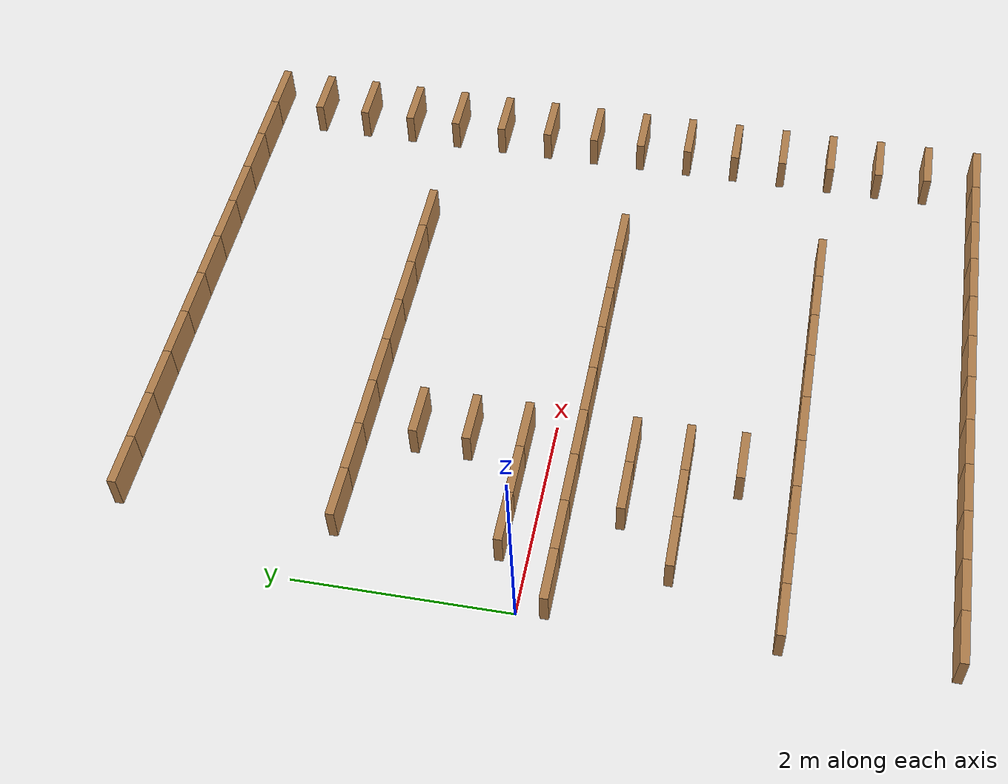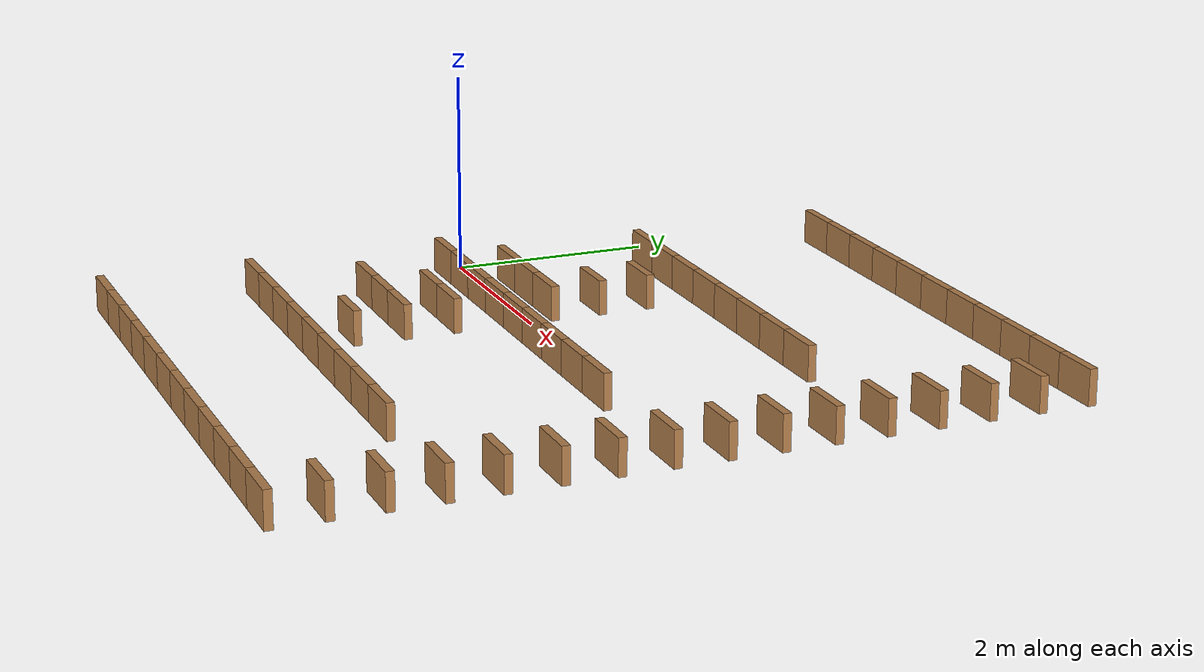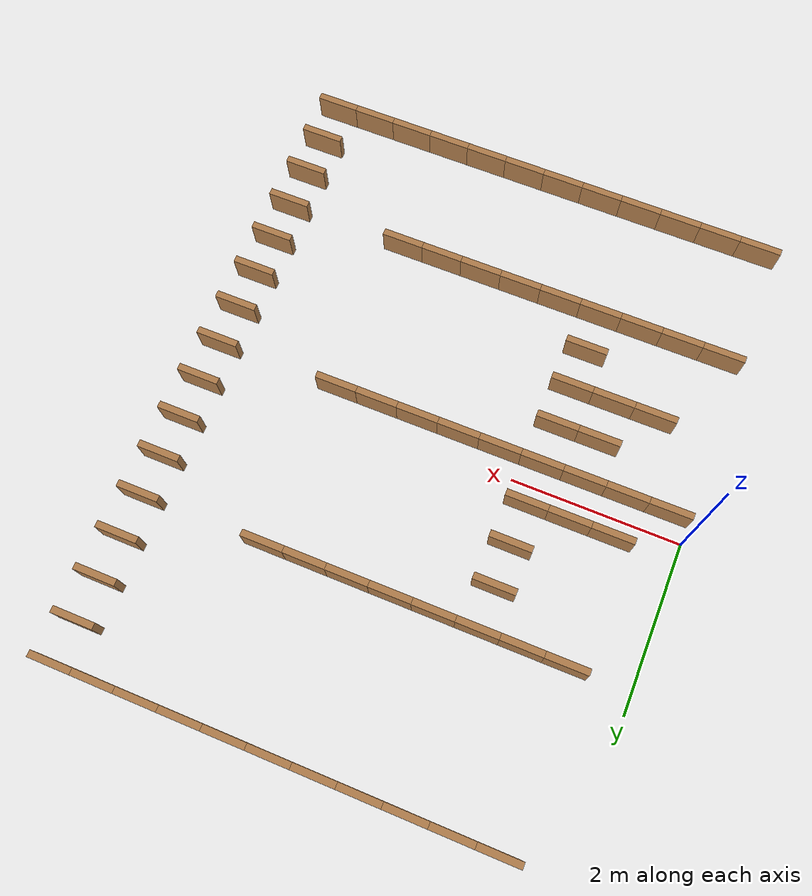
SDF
<sdf version="1.7">
 <world name="default">
  <model name="wall_r0_c13">
   <pose>0.75 3.75 0.175 0 0 0</pose>
   <static>true</static>
   <link name="link">
    <collision name="col"><geometry><box><size>0.5 0.08 0.35</size></box></geometry></collision>
    <visual name="vis">
     <geometry><box><size>0.5 0.08 0.35</size></box></geometry>
     <material>
      <ambient>0.3 0.2 0.1 1</ambient>
      <diffuse>0.7 0.5 0.3 1</diffuse>
      <specular>0.1 0.1 0.1 1</specular>
     </material>
    </visual>
   </link>
  </model>
  <model name="wall_r0_c14">
   <pose>1.25 3.75 0.175 0 0 0</pose>
   <static>true</static>
   <link name="link">
    <collision name="col"><geometry><box><size>0.5 0.08 0.35</size></box></geometry></collision>
    <visual name="vis">
     <geometry><box><size>0.5 0.08 0.35</size></box></geometry>
     <material>
      <ambient>0.3 0.2 0.1 1</ambient>
      <diffuse>0.7 0.5 0.3 1</diffuse>
      <specular>0.1 0.1 0.1 1</specular>
     </material>
    </visual>
   </link>
  </model>
  <model name="wall_r0_c15">
   <pose>1.75 3.75 0.175 0 0 0</pose>
   <static>true</static>
   <link name="link">
    <collision name="col"><geometry><box><size>0.5 0.08 0.35</size></box></geometry></collision>
    <visual name="vis">
     <geometry><box><size>0.5 0.08 0.35</size></box></geometry>
     <material>
      <ambient>0.3 0.2 0.1 1</ambient>
      <diffuse>0.7 0.5 0.3 1</diffuse>
      <specular>0.1 0.1 0.1 1</specular>
     </material>
    </visual>
   </link>
  </model>
  <model name="wall_r0_c16">
   <pose>2.25 3.75 0.175 0 0 0</pose>
   <static>true</static>
   <link name="link">
    <collision name="col"><geometry><box><size>0.5 0.08 0.35</size></box></geometry></collision>
    <visual name="vis">
     <geometry><box><size>0.5 0.08 0.35</size></box></geometry>
     <material>
      <ambient>0.3 0.2 0.1 1</ambient>
      <diffuse>0.7 0.5 0.3 1</diffuse>
      <specular>0.1 0.1 0.1 1</specular>
     </material>
    </visual>
   </link>
  </model>
  <model name="wall_r0_c17">
   <pose>2.75 3.75 0.175 0 0 0</pose>
   <static>true</static>
   <link name="link">
    <collision name="col"><geometry><box><size>0.5 0.08 0.35</size></box></geometry></collision>
    <visual name="vis">
     <geometry><box><size>0.5 0.08 0.35</size></box></geometry>
     <material>
      <ambient>0.3 0.2 0.1 1</ambient>
      <diffuse>0.7 0.5 0.3 1</diffuse>
      <specular>0.1 0.1 0.1 1</specular>
     </material>
    </visual>
   </link>
  </model>
  <model name="wall_r0_c18">
   <pose>3.25 3.75 0.175 0 0 0</pose>
   <static>true</static>
   <link name="link">
    <collision name="col"><geometry><box><size>0.5 0.08 0.35</size></box></geometry></collision>
    <visual name="vis">
     <geometry><box><size>0.5 0.08 0.35</size></box></geometry>
     <material>
      <ambient>0.3 0.2 0.1 1</ambient>
      <diffuse>0.7 0.5 0.3 1</diffuse>
      <specular>0.1 0.1 0.1 1</specular>
     </material>
    </visual>
   </link>
  </model>
  <model name="wall_r0_c19">
   <pose>3.75 3.75 0.175 0 0 0</pose>
   <static>true</static>
   <link name="link">
    <collision name="col"><geometry><box><size>0.5 0.08 0.35</size></box></geometry></collision>
    <visual name="vis">
     <geometry><box><size>0.5 0.08 0.35</size></box></geometry>
     <material>
      <ambient>0.3 0.2 0.1 1</ambient>
      <diffuse>0.7 0.5 0.3 1</diffuse>
      <specular>0.1 0.1 0.1 1</specular>
     </material>
    </visual>
   </link>
  </model>
  <model name="wall_r0_c20">
   <pose>4.25 3.75 0.175 0 0 0</pose>
   <static>true</static>
   <link name="link">
    <collision name="col"><geometry><box><size>0.5 0.08 0.35</size></box></geometry></collision>
    <visual name="vis">
     <geometry><box><size>0.5 0.08 0.35</size></box></geometry>
     <material>
      <ambient>0.3 0.2 0.1 1</ambient>
      <diffuse>0.7 0.5 0.3 1</diffuse>
      <specular>0.1 0.1 0.1 1</specular>
     </material>
    </visual>
   </link>
  </model>
  <model name="wall_r0_c21">
   <pose>4.75 3.75 0.175 0 0 0</pose>
   <static>true</static>
   <link name="link">
    <collision name="col"><geometry><box><size>0.5 0.08 0.35</size></box></geometry></collision>
    <visual name="vis">
     <geometry><box><size>0.5 0.08 0.35</size></box></geometry>
     <material>
      <ambient>0.3 0.2 0.1 1</ambient>
      <diffuse>0.7 0.5 0.3 1</diffuse>
      <specular>0.1 0.1 0.1 1</specular>
     </material>
    </visual>
   </link>
  </model>
  <model name="wall_r0_c22">
   <pose>5.25 3.75 0.175 0 0 0</pose>
   <static>true</static>
   <link name="link">
    <collision name="col"><geometry><box><size>0.5 0.08 0.35</size></box></geometry></collision>
    <visual name="vis">
     <geometry><box><size>0.5 0.08 0.35</size></box></geometry>
     <material>
      <ambient>0.3 0.2 0.1 1</ambient>
      <diffuse>0.7 0.5 0.3 1</diffuse>
      <specular>0.1 0.1 0.1 1</specular>
     </material>
    </visual>
   </link>
  </model>
  <model name="wall_r0_c23">
   <pose>5.75 3.75 0.175 0 0 0</pose>
   <static>true</static>
   <link name="link">
    <collision name="col"><geometry><box><size>0.5 0.08 0.35</size></box></geometry></collision>
    <visual name="vis">
     <geometry><box><size>0.5 0.08 0.35</size></box></geometry>
     <material>
      <ambient>0.3 0.2 0.1 1</ambient>
      <diffuse>0.7 0.5 0.3 1</diffuse>
      <specular>0.1 0.1 0.1 1</specular>
     </material>
    </visual>
   </link>
  </model>
  <model name="wall_r1_c23">
   <pose>5.75 3.25 0.175 0 0 0</pose>
   <static>true</static>
   <link name="link">
    <collision name="col"><geometry><box><size>0.5 0.08 0.35</size></box></geometry></collision>
    <visual name="vis">
     <geometry><box><size>0.5 0.08 0.35</size></box></geometry>
     <material>
      <ambient>0.3 0.2 0.1 1</ambient>
      <diffuse>0.7 0.5 0.3 1</diffuse>
      <specular>0.1 0.1 0.1 1</specular>
     </material>
    </visual>
   </link>
  </model>
  <model name="wall_r2_c23">
   <pose>5.75 2.75 0.175 0 0 0</pose>
   <static>true</static>
   <link name="link">
    <collision name="col"><geometry><box><size>0.5 0.08 0.35</size></box></geometry></collision>
    <visual name="vis">
     <geometry><box><size>0.5 0.08 0.35</size></box></geometry>
     <material>
      <ambient>0.3 0.2 0.1 1</ambient>
      <diffuse>0.7 0.5 0.3 1</diffuse>
      <specular>0.1 0.1 0.1 1</specular>
     </material>
    </visual>
   </link>
  </model>
  <model name="wall_r3_c23">
   <pose>5.75 2.25 0.175 0 0 0</pose>
   <static>true</static>
   <link name="link">
    <collision name="col"><geometry><box><size>0.5 0.08 0.35</size></box></geometry></collision>
    <visual name="vis">
     <geometry><box><size>0.5 0.08 0.35</size></box></geometry>
     <material>
      <ambient>0.3 0.2 0.1 1</ambient>
      <diffuse>0.7 0.5 0.3 1</diffuse>
      <specular>0.1 0.1 0.1 1</specular>
     </material>
    </visual>
   </link>
  </model>
  <model name="wall_r4_c13">
   <pose>0.75 1.75 0.175 0 0 0</pose>
   <static>true</static>
   <link name="link">
    <collision name="col"><geometry><box><size>0.5 0.08 0.35</size></box></geometry></collision>
    <visual name="vis">
     <geometry><box><size>0.5 0.08 0.35</size></box></geometry>
     <material>
      <ambient>0.3 0.2 0.1 1</ambient>
      <diffuse>0.7 0.5 0.3 1</diffuse>
      <specular>0.1 0.1 0.1 1</specular>
     </material>
    </visual>
   </link>
  </model>
  <model name="wall_r4_c14">
   <pose>1.25 1.75 0.175 0 0 0</pose>
   <static>true</static>
   <link name="link">
    <collision name="col"><geometry><box><size>0.5 0.08 0.35</size></box></geometry></collision>
    <visual name="vis">
     <geometry><box><size>0.5 0.08 0.35</size></box></geometry>
     <material>
      <ambient>0.3 0.2 0.1 1</ambient>
      <diffuse>0.7 0.5 0.3 1</diffuse>
      <specular>0.1 0.1 0.1 1</specular>
     </material>
    </visual>
   </link>
  </model>
  <model name="wall_r4_c15">
   <pose>1.75 1.75 0.175 0 0 0</pose>
   <static>true</static>
   <link name="link">
    <collision name="col"><geometry><box><size>0.5 0.08 0.35</size></box></geometry></collision>
    <visual name="vis">
     <geometry><box><size>0.5 0.08 0.35</size></box></geometry>
     <material>
      <ambient>0.3 0.2 0.1 1</ambient>
      <diffuse>0.7 0.5 0.3 1</diffuse>
      <specular>0.1 0.1 0.1 1</specular>
     </material>
    </visual>
   </link>
  </model>
  <model name="wall_r4_c16">
   <pose>2.25 1.75 0.175 0 0 0</pose>
   <static>true</static>
   <link name="link">
    <collision name="col"><geometry><box><size>0.5 0.08 0.35</size></box></geometry></collision>
    <visual name="vis">
     <geometry><box><size>0.5 0.08 0.35</size></box></geometry>
     <material>
      <ambient>0.3 0.2 0.1 1</ambient>
      <diffuse>0.7 0.5 0.3 1</diffuse>
      <specular>0.1 0.1 0.1 1</specular>
     </material>
    </visual>
   </link>
  </model>
  <model name="wall_r4_c17">
   <pose>2.75 1.75 0.175 0 0 0</pose>
   <static>true</static>
   <link name="link">
    <collision name="col"><geometry><box><size>0.5 0.08 0.35</size></box></geometry></collision>
    <visual name="vis">
     <geometry><box><size>0.5 0.08 0.35</size></box></geometry>
     <material>
      <ambient>0.3 0.2 0.1 1</ambient>
      <diffuse>0.7 0.5 0.3 1</diffuse>
      <specular>0.1 0.1 0.1 1</specular>
     </material>
    </visual>
   </link>
  </model>
  <model name="wall_r4_c18">
   <pose>3.25 1.75 0.175 0 0 0</pose>
   <static>true</static>
   <link name="link">
    <collision name="col"><geometry><box><size>0.5 0.08 0.35</size></box></geometry></collision>
    <visual name="vis">
     <geometry><box><size>0.5 0.08 0.35</size></box></geometry>
     <material>
      <ambient>0.3 0.2 0.1 1</ambient>
      <diffuse>0.7 0.5 0.3 1</diffuse>
      <specular>0.1 0.1 0.1 1</specular>
     </material>
    </visual>
   </link>
  </model>
  <model name="wall_r4_c19">
   <pose>3.75 1.75 0.175 0 0 0</pose>
   <static>true</static>
   <link name="link">
    <collision name="col"><geometry><box><size>0.5 0.08 0.35</size></box></geometry></collision>
    <visual name="vis">
     <geometry><box><size>0.5 0.08 0.35</size></box></geometry>
     <material>
      <ambient>0.3 0.2 0.1 1</ambient>
      <diffuse>0.7 0.5 0.3 1</diffuse>
      <specular>0.1 0.1 0.1 1</specular>
     </material>
    </visual>
   </link>
  </model>
  <model name="wall_r4_c20">
   <pose>4.25 1.75 0.175 0 0 0</pose>
   <static>true</static>
   <link name="link">
    <collision name="col"><geometry><box><size>0.5 0.08 0.35</size></box></geometry></collision>
    <visual name="vis">
     <geometry><box><size>0.5 0.08 0.35</size></box></geometry>
     <material>
      <ambient>0.3 0.2 0.1 1</ambient>
      <diffuse>0.7 0.5 0.3 1</diffuse>
      <specular>0.1 0.1 0.1 1</specular>
     </material>
    </visual>
   </link>
  </model>
  <model name="wall_r4_c23">
   <pose>5.75 1.75 0.175 0 0 0</pose>
   <static>true</static>
   <link name="link">
    <collision name="col"><geometry><box><size>0.5 0.08 0.35</size></box></geometry></collision>
    <visual name="vis">
     <geometry><box><size>0.5 0.08 0.35</size></box></geometry>
     <material>
      <ambient>0.3 0.2 0.1 1</ambient>
      <diffuse>0.7 0.5 0.3 1</diffuse>
      <specular>0.1 0.1 0.1 1</specular>
     </material>
    </visual>
   </link>
  </model>
  <model name="wall_r5_c15">
   <pose>1.75 1.25 0.175 0 0 0</pose>
   <static>true</static>
   <link name="link">
    <collision name="col"><geometry><box><size>0.5 0.08 0.35</size></box></geometry></collision>
    <visual name="vis">
     <geometry><box><size>0.5 0.08 0.35</size></box></geometry>
     <material>
      <ambient>0.3 0.2 0.1 1</ambient>
      <diffuse>0.7 0.5 0.3 1</diffuse>
      <specular>0.1 0.1 0.1 1</specular>
     </material>
    </visual>
   </link>
  </model>
  <model name="wall_r5_c23">
   <pose>5.75 1.25 0.175 0 0 0</pose>
   <static>true</static>
   <link name="link">
    <collision name="col"><geometry><box><size>0.5 0.08 0.35</size></box></geometry></collision>
    <visual name="vis">
     <geometry><box><size>0.5 0.08 0.35</size></box></geometry>
     <material>
      <ambient>0.3 0.2 0.1 1</ambient>
      <diffuse>0.7 0.5 0.3 1</diffuse>
      <specular>0.1 0.1 0.1 1</specular>
     </material>
    </visual>
   </link>
  </model>
  <model name="wall_r6_c15">
   <pose>1.75 0.75 0.175 0 0 0</pose>
   <static>true</static>
   <link name="link">
    <collision name="col"><geometry><box><size>0.5 0.08 0.35</size></box></geometry></collision>
    <visual name="vis">
     <geometry><box><size>0.5 0.08 0.35</size></box></geometry>
     <material>
      <ambient>0.3 0.2 0.1 1</ambient>
      <diffuse>0.7 0.5 0.3 1</diffuse>
      <specular>0.1 0.1 0.1 1</specular>
     </material>
    </visual>
   </link>
  </model>
  <model name="wall_r6_c23">
   <pose>5.75 0.75 0.175 0 0 0</pose>
   <static>true</static>
   <link name="link">
    <collision name="col"><geometry><box><size>0.5 0.08 0.35</size></box></geometry></collision>
    <visual name="vis">
     <geometry><box><size>0.5 0.08 0.35</size></box></geometry>
     <material>
      <ambient>0.3 0.2 0.1 1</ambient>
      <diffuse>0.7 0.5 0.3 1</diffuse>
      <specular>0.1 0.1 0.1 1</specular>
     </material>
    </visual>
   </link>
  </model>
  <model name="wall_r7_c13">
   <pose>0.75 0.25 0.175 0 0 0</pose>
   <static>true</static>
   <link name="link">
    <collision name="col"><geometry><box><size>0.5 0.08 0.35</size></box></geometry></collision>
    <visual name="vis">
     <geometry><box><size>0.5 0.08 0.35</size></box></geometry>
     <material>
      <ambient>0.3 0.2 0.1 1</ambient>
      <diffuse>0.7 0.5 0.3 1</diffuse>
      <specular>0.1 0.1 0.1 1</specular>
     </material>
    </visual>
   </link>
  </model>
  <model name="wall_r7_c14">
   <pose>1.25 0.25 0.175 0 0 0</pose>
   <static>true</static>
   <link name="link">
    <collision name="col"><geometry><box><size>0.5 0.08 0.35</size></box></geometry></collision>
    <visual name="vis">
     <geometry><box><size>0.5 0.08 0.35</size></box></geometry>
     <material>
      <ambient>0.3 0.2 0.1 1</ambient>
      <diffuse>0.7 0.5 0.3 1</diffuse>
      <specular>0.1 0.1 0.1 1</specular>
     </material>
    </visual>
   </link>
  </model>
  <model name="wall_r7_c15">
   <pose>1.75 0.25 0.175 0 0 0</pose>
   <static>true</static>
   <link name="link">
    <collision name="col"><geometry><box><size>0.5 0.08 0.35</size></box></geometry></collision>
    <visual name="vis">
     <geometry><box><size>0.5 0.08 0.35</size></box></geometry>
     <material>
      <ambient>0.3 0.2 0.1 1</ambient>
      <diffuse>0.7 0.5 0.3 1</diffuse>
      <specular>0.1 0.1 0.1 1</specular>
     </material>
    </visual>
   </link>
  </model>
  <model name="wall_r7_c23">
   <pose>5.75 0.25 0.175 0 0 0</pose>
   <static>true</static>
   <link name="link">
    <collision name="col"><geometry><box><size>0.5 0.08 0.35</size></box></geometry></collision>
    <visual name="vis">
     <geometry><box><size>0.5 0.08 0.35</size></box></geometry>
     <material>
      <ambient>0.3 0.2 0.1 1</ambient>
      <diffuse>0.7 0.5 0.3 1</diffuse>
      <specular>0.1 0.1 0.1 1</specular>
     </material>
    </visual>
   </link>
  </model>
  <model name="wall_r8_c12">
   <pose>0.25 -0.25 0.175 0 0 0</pose>
   <static>true</static>
   <link name="link">
    <collision name="col"><geometry><box><size>0.5 0.08 0.35</size></box></geometry></collision>
    <visual name="vis">
     <geometry><box><size>0.5 0.08 0.35</size></box></geometry>
     <material>
      <ambient>0.3 0.2 0.1 1</ambient>
      <diffuse>0.7 0.5 0.3 1</diffuse>
      <specular>0.1 0.1 0.1 1</specular>
     </material>
    </visual>
   </link>
  </model>
  <model name="wall_r8_c13">
   <pose>0.75 -0.25 0.175 0 0 0</pose>
   <static>true</static>
   <link name="link">
    <collision name="col"><geometry><box><size>0.5 0.08 0.35</size></box></geometry></collision>
    <visual name="vis">
     <geometry><box><size>0.5 0.08 0.35</size></box></geometry>
     <material>
      <ambient>0.3 0.2 0.1 1</ambient>
      <diffuse>0.7 0.5 0.3 1</diffuse>
      <specular>0.1 0.1 0.1 1</specular>
     </material>
    </visual>
   </link>
  </model>
  <model name="wall_r8_c14">
   <pose>1.25 -0.25 0.175 0 0 0</pose>
   <static>true</static>
   <link name="link">
    <collision name="col"><geometry><box><size>0.5 0.08 0.35</size></box></geometry></collision>
    <visual name="vis">
     <geometry><box><size>0.5 0.08 0.35</size></box></geometry>
     <material>
      <ambient>0.3 0.2 0.1 1</ambient>
      <diffuse>0.7 0.5 0.3 1</diffuse>
      <specular>0.1 0.1 0.1 1</specular>
     </material>
    </visual>
   </link>
  </model>
  <model name="wall_r8_c15">
   <pose>1.75 -0.25 0.175 0 0 0</pose>
   <static>true</static>
   <link name="link">
    <collision name="col"><geometry><box><size>0.5 0.08 0.35</size></box></geometry></collision>
    <visual name="vis">
     <geometry><box><size>0.5 0.08 0.35</size></box></geometry>
     <material>
      <ambient>0.3 0.2 0.1 1</ambient>
      <diffuse>0.7 0.5 0.3 1</diffuse>
      <specular>0.1 0.1 0.1 1</specular>
     </material>
    </visual>
   </link>
  </model>
  <model name="wall_r8_c16">
   <pose>2.25 -0.25 0.175 0 0 0</pose>
   <static>true</static>
   <link name="link">
    <collision name="col"><geometry><box><size>0.5 0.08 0.35</size></box></geometry></collision>
    <visual name="vis">
     <geometry><box><size>0.5 0.08 0.35</size></box></geometry>
     <material>
      <ambient>0.3 0.2 0.1 1</ambient>
      <diffuse>0.7 0.5 0.3 1</diffuse>
      <specular>0.1 0.1 0.1 1</specular>
     </material>
    </visual>
   </link>
  </model>
  <model name="wall_r8_c17">
   <pose>2.75 -0.25 0.175 0 0 0</pose>
   <static>true</static>
   <link name="link">
    <collision name="col"><geometry><box><size>0.5 0.08 0.35</size></box></geometry></collision>
    <visual name="vis">
     <geometry><box><size>0.5 0.08 0.35</size></box></geometry>
     <material>
      <ambient>0.3 0.2 0.1 1</ambient>
      <diffuse>0.7 0.5 0.3 1</diffuse>
      <specular>0.1 0.1 0.1 1</specular>
     </material>
    </visual>
   </link>
  </model>
  <model name="wall_r8_c18">
   <pose>3.25 -0.25 0.175 0 0 0</pose>
   <static>true</static>
   <link name="link">
    <collision name="col"><geometry><box><size>0.5 0.08 0.35</size></box></geometry></collision>
    <visual name="vis">
     <geometry><box><size>0.5 0.08 0.35</size></box></geometry>
     <material>
      <ambient>0.3 0.2 0.1 1</ambient>
      <diffuse>0.7 0.5 0.3 1</diffuse>
      <specular>0.1 0.1 0.1 1</specular>
     </material>
    </visual>
   </link>
  </model>
  <model name="wall_r8_c19">
   <pose>3.75 -0.25 0.175 0 0 0</pose>
   <static>true</static>
   <link name="link">
    <collision name="col"><geometry><box><size>0.5 0.08 0.35</size></box></geometry></collision>
    <visual name="vis">
     <geometry><box><size>0.5 0.08 0.35</size></box></geometry>
     <material>
      <ambient>0.3 0.2 0.1 1</ambient>
      <diffuse>0.7 0.5 0.3 1</diffuse>
      <specular>0.1 0.1 0.1 1</specular>
     </material>
    </visual>
   </link>
  </model>
  <model name="wall_r8_c20">
   <pose>4.25 -0.25 0.175 0 0 0</pose>
   <static>true</static>
   <link name="link">
    <collision name="col"><geometry><box><size>0.5 0.08 0.35</size></box></geometry></collision>
    <visual name="vis">
     <geometry><box><size>0.5 0.08 0.35</size></box></geometry>
     <material>
      <ambient>0.3 0.2 0.1 1</ambient>
      <diffuse>0.7 0.5 0.3 1</diffuse>
      <specular>0.1 0.1 0.1 1</specular>
     </material>
    </visual>
   </link>
  </model>
  <model name="wall_r8_c23">
   <pose>5.75 -0.25 0.175 0 0 0</pose>
   <static>true</static>
   <link name="link">
    <collision name="col"><geometry><box><size>0.5 0.08 0.35</size></box></geometry></collision>
    <visual name="vis">
     <geometry><box><size>0.5 0.08 0.35</size></box></geometry>
     <material>
      <ambient>0.3 0.2 0.1 1</ambient>
      <diffuse>0.7 0.5 0.3 1</diffuse>
      <specular>0.1 0.1 0.1 1</specular>
     </material>
    </visual>
   </link>
  </model>
  <model name="wall_r9_c14">
   <pose>1.25 -0.75 0.175 0 0 0</pose>
   <static>true</static>
   <link name="link">
    <collision name="col"><geometry><box><size>0.5 0.08 0.35</size></box></geometry></collision>
    <visual name="vis">
     <geometry><box><size>0.5 0.08 0.35</size></box></geometry>
     <material>
      <ambient>0.3 0.2 0.1 1</ambient>
      <diffuse>0.7 0.5 0.3 1</diffuse>
      <specular>0.1 0.1 0.1 1</specular>
     </material>
    </visual>
   </link>
  </model>
  <model name="wall_r9_c15">
   <pose>1.75 -0.75 0.175 0 0 0</pose>
   <static>true</static>
   <link name="link">
    <collision name="col"><geometry><box><size>0.5 0.08 0.35</size></box></geometry></collision>
    <visual name="vis">
     <geometry><box><size>0.5 0.08 0.35</size></box></geometry>
     <material>
      <ambient>0.3 0.2 0.1 1</ambient>
      <diffuse>0.7 0.5 0.3 1</diffuse>
      <specular>0.1 0.1 0.1 1</specular>
     </material>
    </visual>
   </link>
  </model>
  <model name="wall_r9_c23">
   <pose>5.75 -0.75 0.175 0 0 0</pose>
   <static>true</static>
   <link name="link">
    <collision name="col"><geometry><box><size>0.5 0.08 0.35</size></box></geometry></collision>
    <visual name="vis">
     <geometry><box><size>0.5 0.08 0.35</size></box></geometry>
     <material>
      <ambient>0.3 0.2 0.1 1</ambient>
      <diffuse>0.7 0.5 0.3 1</diffuse>
      <specular>0.1 0.1 0.1 1</specular>
     </material>
    </visual>
   </link>
  </model>
  <model name="wall_r10_c13">
   <pose>0.75 -1.25 0.175 0 0 0</pose>
   <static>true</static>
   <link name="link">
    <collision name="col"><geometry><box><size>0.5 0.08 0.35</size></box></geometry></collision>
    <visual name="vis">
     <geometry><box><size>0.5 0.08 0.35</size></box></geometry>
     <material>
      <ambient>0.3 0.2 0.1 1</ambient>
      <diffuse>0.7 0.5 0.3 1</diffuse>
      <specular>0.1 0.1 0.1 1</specular>
     </material>
    </visual>
   </link>
  </model>
  <model name="wall_r10_c14">
   <pose>1.25 -1.25 0.175 0 0 0</pose>
   <static>true</static>
   <link name="link">
    <collision name="col"><geometry><box><size>0.5 0.08 0.35</size></box></geometry></collision>
    <visual name="vis">
     <geometry><box><size>0.5 0.08 0.35</size></box></geometry>
     <material>
      <ambient>0.3 0.2 0.1 1</ambient>
      <diffuse>0.7 0.5 0.3 1</diffuse>
      <specular>0.1 0.1 0.1 1</specular>
     </material>
    </visual>
   </link>
  </model>
  <model name="wall_r10_c15">
   <pose>1.75 -1.25 0.175 0 0 0</pose>
   <static>true</static>
   <link name="link">
    <collision name="col"><geometry><box><size>0.5 0.08 0.35</size></box></geometry></collision>
    <visual name="vis">
     <geometry><box><size>0.5 0.08 0.35</size></box></geometry>
     <material>
      <ambient>0.3 0.2 0.1 1</ambient>
      <diffuse>0.7 0.5 0.3 1</diffuse>
      <specular>0.1 0.1 0.1 1</specular>
     </material>
    </visual>
   </link>
  </model>
  <model name="wall_r10_c23">
   <pose>5.75 -1.25 0.175 0 0 0</pose>
   <static>true</static>
   <link name="link">
    <collision name="col"><geometry><box><size>0.5 0.08 0.35</size></box></geometry></collision>
    <visual name="vis">
     <geometry><box><size>0.5 0.08 0.35</size></box></geometry>
     <material>
      <ambient>0.3 0.2 0.1 1</ambient>
      <diffuse>0.7 0.5 0.3 1</diffuse>
      <specular>0.1 0.1 0.1 1</specular>
     </material>
    </visual>
   </link>
  </model>
  <model name="wall_r11_c15">
   <pose>1.75 -1.75 0.175 0 0 0</pose>
   <static>true</static>
   <link name="link">
    <collision name="col"><geometry><box><size>0.5 0.08 0.35</size></box></geometry></collision>
    <visual name="vis">
     <geometry><box><size>0.5 0.08 0.35</size></box></geometry>
     <material>
      <ambient>0.3 0.2 0.1 1</ambient>
      <diffuse>0.7 0.5 0.3 1</diffuse>
      <specular>0.1 0.1 0.1 1</specular>
     </material>
    </visual>
   </link>
  </model>
  <model name="wall_r11_c23">
   <pose>5.75 -1.75 0.175 0 0 0</pose>
   <static>true</static>
   <link name="link">
    <collision name="col"><geometry><box><size>0.5 0.08 0.35</size></box></geometry></collision>
    <visual name="vis">
     <geometry><box><size>0.5 0.08 0.35</size></box></geometry>
     <material>
      <ambient>0.3 0.2 0.1 1</ambient>
      <diffuse>0.7 0.5 0.3 1</diffuse>
      <specular>0.1 0.1 0.1 1</specular>
     </material>
    </visual>
   </link>
  </model>
  <model name="wall_r12_c12">
   <pose>0.25 -2.25 0.175 0 0 0</pose>
   <static>true</static>
   <link name="link">
    <collision name="col"><geometry><box><size>0.5 0.08 0.35</size></box></geometry></collision>
    <visual name="vis">
     <geometry><box><size>0.5 0.08 0.35</size></box></geometry>
     <material>
      <ambient>0.3 0.2 0.1 1</ambient>
      <diffuse>0.7 0.5 0.3 1</diffuse>
      <specular>0.1 0.1 0.1 1</specular>
     </material>
    </visual>
   </link>
  </model>
  <model name="wall_r12_c13">
   <pose>0.75 -2.25 0.175 0 0 0</pose>
   <static>true</static>
   <link name="link">
    <collision name="col"><geometry><box><size>0.5 0.08 0.35</size></box></geometry></collision>
    <visual name="vis">
     <geometry><box><size>0.5 0.08 0.35</size></box></geometry>
     <material>
      <ambient>0.3 0.2 0.1 1</ambient>
      <diffuse>0.7 0.5 0.3 1</diffuse>
      <specular>0.1 0.1 0.1 1</specular>
     </material>
    </visual>
   </link>
  </model>
  <model name="wall_r12_c14">
   <pose>1.25 -2.25 0.175 0 0 0</pose>
   <static>true</static>
   <link name="link">
    <collision name="col"><geometry><box><size>0.5 0.08 0.35</size></box></geometry></collision>
    <visual name="vis">
     <geometry><box><size>0.5 0.08 0.35</size></box></geometry>
     <material>
      <ambient>0.3 0.2 0.1 1</ambient>
      <diffuse>0.7 0.5 0.3 1</diffuse>
      <specular>0.1 0.1 0.1 1</specular>
     </material>
    </visual>
   </link>
  </model>
  <model name="wall_r12_c15">
   <pose>1.75 -2.25 0.175 0 0 0</pose>
   <static>true</static>
   <link name="link">
    <collision name="col"><geometry><box><size>0.5 0.08 0.35</size></box></geometry></collision>
    <visual name="vis">
     <geometry><box><size>0.5 0.08 0.35</size></box></geometry>
     <material>
      <ambient>0.3 0.2 0.1 1</ambient>
      <diffuse>0.7 0.5 0.3 1</diffuse>
      <specular>0.1 0.1 0.1 1</specular>
     </material>
    </visual>
   </link>
  </model>
  <model name="wall_r12_c16">
   <pose>2.25 -2.25 0.175 0 0 0</pose>
   <static>true</static>
   <link name="link">
    <collision name="col"><geometry><box><size>0.5 0.08 0.35</size></box></geometry></collision>
    <visual name="vis">
     <geometry><box><size>0.5 0.08 0.35</size></box></geometry>
     <material>
      <ambient>0.3 0.2 0.1 1</ambient>
      <diffuse>0.7 0.5 0.3 1</diffuse>
      <specular>0.1 0.1 0.1 1</specular>
     </material>
    </visual>
   </link>
  </model>
  <model name="wall_r12_c17">
   <pose>2.75 -2.25 0.175 0 0 0</pose>
   <static>true</static>
   <link name="link">
    <collision name="col"><geometry><box><size>0.5 0.08 0.35</size></box></geometry></collision>
    <visual name="vis">
     <geometry><box><size>0.5 0.08 0.35</size></box></geometry>
     <material>
      <ambient>0.3 0.2 0.1 1</ambient>
      <diffuse>0.7 0.5 0.3 1</diffuse>
      <specular>0.1 0.1 0.1 1</specular>
     </material>
    </visual>
   </link>
  </model>
  <model name="wall_r12_c18">
   <pose>3.25 -2.25 0.175 0 0 0</pose>
   <static>true</static>
   <link name="link">
    <collision name="col"><geometry><box><size>0.5 0.08 0.35</size></box></geometry></collision>
    <visual name="vis">
     <geometry><box><size>0.5 0.08 0.35</size></box></geometry>
     <material>
      <ambient>0.3 0.2 0.1 1</ambient>
      <diffuse>0.7 0.5 0.3 1</diffuse>
      <specular>0.1 0.1 0.1 1</specular>
     </material>
    </visual>
   </link>
  </model>
  <model name="wall_r12_c19">
   <pose>3.75 -2.25 0.175 0 0 0</pose>
   <static>true</static>
   <link name="link">
    <collision name="col"><geometry><box><size>0.5 0.08 0.35</size></box></geometry></collision>
    <visual name="vis">
     <geometry><box><size>0.5 0.08 0.35</size></box></geometry>
     <material>
      <ambient>0.3 0.2 0.1 1</ambient>
      <diffuse>0.7 0.5 0.3 1</diffuse>
      <specular>0.1 0.1 0.1 1</specular>
     </material>
    </visual>
   </link>
  </model>
  <model name="wall_r12_c20">
   <pose>4.25 -2.25 0.175 0 0 0</pose>
   <static>true</static>
   <link name="link">
    <collision name="col"><geometry><box><size>0.5 0.08 0.35</size></box></geometry></collision>
    <visual name="vis">
     <geometry><box><size>0.5 0.08 0.35</size></box></geometry>
     <material>
      <ambient>0.3 0.2 0.1 1</ambient>
      <diffuse>0.7 0.5 0.3 1</diffuse>
      <specular>0.1 0.1 0.1 1</specular>
     </material>
    </visual>
   </link>
  </model>
  <model name="wall_r12_c23">
   <pose>5.75 -2.25 0.175 0 0 0</pose>
   <static>true</static>
   <link name="link">
    <collision name="col"><geometry><box><size>0.5 0.08 0.35</size></box></geometry></collision>
    <visual name="vis">
     <geometry><box><size>0.5 0.08 0.35</size></box></geometry>
     <material>
      <ambient>0.3 0.2 0.1 1</ambient>
      <diffuse>0.7 0.5 0.3 1</diffuse>
      <specular>0.1 0.1 0.1 1</specular>
     </material>
    </visual>
   </link>
  </model>
  <model name="wall_r13_c23">
   <pose>5.75 -2.75 0.175 0 0 0</pose>
   <static>true</static>
   <link name="link">
    <collision name="col"><geometry><box><size>0.5 0.08 0.35</size></box></geometry></collision>
    <visual name="vis">
     <geometry><box><size>0.5 0.08 0.35</size></box></geometry>
     <material>
      <ambient>0.3 0.2 0.1 1</ambient>
      <diffuse>0.7 0.5 0.3 1</diffuse>
      <specular>0.1 0.1 0.1 1</specular>
     </material>
    </visual>
   </link>
  </model>
  <model name="wall_r14_c23">
   <pose>5.75 -3.25 0.175 0 0 0</pose>
   <static>true</static>
   <link name="link">
    <collision name="col"><geometry><box><size>0.5 0.08 0.35</size></box></geometry></collision>
    <visual name="vis">
     <geometry><box><size>0.5 0.08 0.35</size></box></geometry>
     <material>
      <ambient>0.3 0.2 0.1 1</ambient>
      <diffuse>0.7 0.5 0.3 1</diffuse>
      <specular>0.1 0.1 0.1 1</specular>
     </material>
    </visual>
   </link>
  </model>
  <model name="wall_r15_c12">
   <pose>0.25 -3.75 0.175 0 0 0</pose>
   <static>true</static>
   <link name="link">
    <collision name="col"><geometry><box><size>0.5 0.08 0.35</size></box></geometry></collision>
    <visual name="vis">
     <geometry><box><size>0.5 0.08 0.35</size></box></geometry>
     <material>
      <ambient>0.3 0.2 0.1 1</ambient>
      <diffuse>0.7 0.5 0.3 1</diffuse>
      <specular>0.1 0.1 0.1 1</specular>
     </material>
    </visual>
   </link>
  </model>
  <model name="wall_r15_c13">
   <pose>0.75 -3.75 0.175 0 0 0</pose>
   <static>true</static>
   <link name="link">
    <collision name="col"><geometry><box><size>0.5 0.08 0.35</size></box></geometry></collision>
    <visual name="vis">
     <geometry><box><size>0.5 0.08 0.35</size></box></geometry>
     <material>
      <ambient>0.3 0.2 0.1 1</ambient>
      <diffuse>0.7 0.5 0.3 1</diffuse>
      <specular>0.1 0.1 0.1 1</specular>
     </material>
    </visual>
   </link>
  </model>
  <model name="wall_r15_c14">
   <pose>1.25 -3.75 0.175 0 0 0</pose>
   <static>true</static>
   <link name="link">
    <collision name="col"><geometry><box><size>0.5 0.08 0.35</size></box></geometry></collision>
    <visual name="vis">
     <geometry><box><size>0.5 0.08 0.35</size></box></geometry>
     <material>
      <ambient>0.3 0.2 0.1 1</ambient>
      <diffuse>0.7 0.5 0.3 1</diffuse>
      <specular>0.1 0.1 0.1 1</specular>
     </material>
    </visual>
   </link>
  </model>
  <model name="wall_r15_c15">
   <pose>1.75 -3.75 0.175 0 0 0</pose>
   <static>true</static>
   <link name="link">
    <collision name="col"><geometry><box><size>0.5 0.08 0.35</size></box></geometry></collision>
    <visual name="vis">
     <geometry><box><size>0.5 0.08 0.35</size></box></geometry>
     <material>
      <ambient>0.3 0.2 0.1 1</ambient>
      <diffuse>0.7 0.5 0.3 1</diffuse>
      <specular>0.1 0.1 0.1 1</specular>
     </material>
    </visual>
   </link>
  </model>
  <model name="wall_r15_c16">
   <pose>2.25 -3.75 0.175 0 0 0</pose>
   <static>true</static>
   <link name="link">
    <collision name="col"><geometry><box><size>0.5 0.08 0.35</size></box></geometry></collision>
    <visual name="vis">
     <geometry><box><size>0.5 0.08 0.35</size></box></geometry>
     <material>
      <ambient>0.3 0.2 0.1 1</ambient>
      <diffuse>0.7 0.5 0.3 1</diffuse>
      <specular>0.1 0.1 0.1 1</specular>
     </material>
    </visual>
   </link>
  </model>
  <model name="wall_r15_c17">
   <pose>2.75 -3.75 0.175 0 0 0</pose>
   <static>true</static>
   <link name="link">
    <collision name="col"><geometry><box><size>0.5 0.08 0.35</size></box></geometry></collision>
    <visual name="vis">
     <geometry><box><size>0.5 0.08 0.35</size></box></geometry>
     <material>
      <ambient>0.3 0.2 0.1 1</ambient>
      <diffuse>0.7 0.5 0.3 1</diffuse>
      <specular>0.1 0.1 0.1 1</specular>
     </material>
    </visual>
   </link>
  </model>
  <model name="wall_r15_c18">
   <pose>3.25 -3.75 0.175 0 0 0</pose>
   <static>true</static>
   <link name="link">
    <collision name="col"><geometry><box><size>0.5 0.08 0.35</size></box></geometry></collision>
    <visual name="vis">
     <geometry><box><size>0.5 0.08 0.35</size></box></geometry>
     <material>
      <ambient>0.3 0.2 0.1 1</ambient>
      <diffuse>0.7 0.5 0.3 1</diffuse>
      <specular>0.1 0.1 0.1 1</specular>
     </material>
    </visual>
   </link>
  </model>
  <model name="wall_r15_c19">
   <pose>3.75 -3.75 0.175 0 0 0</pose>
   <static>true</static>
   <link name="link">
    <collision name="col"><geometry><box><size>0.5 0.08 0.35</size></box></geometry></collision>
    <visual name="vis">
     <geometry><box><size>0.5 0.08 0.35</size></box></geometry>
     <material>
      <ambient>0.3 0.2 0.1 1</ambient>
      <diffuse>0.7 0.5 0.3 1</diffuse>
      <specular>0.1 0.1 0.1 1</specular>
     </material>
    </visual>
   </link>
  </model>
  <model name="wall_r15_c20">
   <pose>4.25 -3.75 0.175 0 0 0</pose>
   <static>true</static>
   <link name="link">
    <collision name="col"><geometry><box><size>0.5 0.08 0.35</size></box></geometry></collision>
    <visual name="vis">
     <geometry><box><size>0.5 0.08 0.35</size></box></geometry>
     <material>
      <ambient>0.3 0.2 0.1 1</ambient>
      <diffuse>0.7 0.5 0.3 1</diffuse>
      <specular>0.1 0.1 0.1 1</specular>
     </material>
    </visual>
   </link>
  </model>
  <model name="wall_r15_c21">
   <pose>4.75 -3.75 0.175 0 0 0</pose>
   <static>true</static>
   <link name="link">
    <collision name="col"><geometry><box><size>0.5 0.08 0.35</size></box></geometry></collision>
    <visual name="vis">
     <geometry><box><size>0.5 0.08 0.35</size></box></geometry>
     <material>
      <ambient>0.3 0.2 0.1 1</ambient>
      <diffuse>0.7 0.5 0.3 1</diffuse>
      <specular>0.1 0.1 0.1 1</specular>
     </material>
    </visual>
   </link>
  </model>
  <model name="wall_r15_c22">
   <pose>5.25 -3.75 0.175 0 0 0</pose>
   <static>true</static>
   <link name="link">
    <collision name="col"><geometry><box><size>0.5 0.08 0.35</size></box></geometry></collision>
    <visual name="vis">
     <geometry><box><size>0.5 0.08 0.35</size></box></geometry>
     <material>
      <ambient>0.3 0.2 0.1 1</ambient>
      <diffuse>0.7 0.5 0.3 1</diffuse>
      <specular>0.1 0.1 0.1 1</specular>
     </material>
    </visual>
   </link>
  </model>
  <model name="wall_r15_c23">
   <pose>5.75 -3.75 0.175 0 0 0</pose>
   <static>true</static>
   <link name="link">
    <collision name="col"><geometry><box><size>0.5 0.08 0.35</size></box></geometry></collision>
    <visual name="vis">
     <geometry><box><size>0.5 0.08 0.35</size></box></geometry>
     <material>
      <ambient>0.3 0.2 0.1 1</ambient>
      <diffuse>0.7 0.5 0.3 1</diffuse>
      <specular>0.1 0.1 0.1 1</specular>
     </material>
    </visual>
   </link>
  </model>
 </world>
</sdf>
